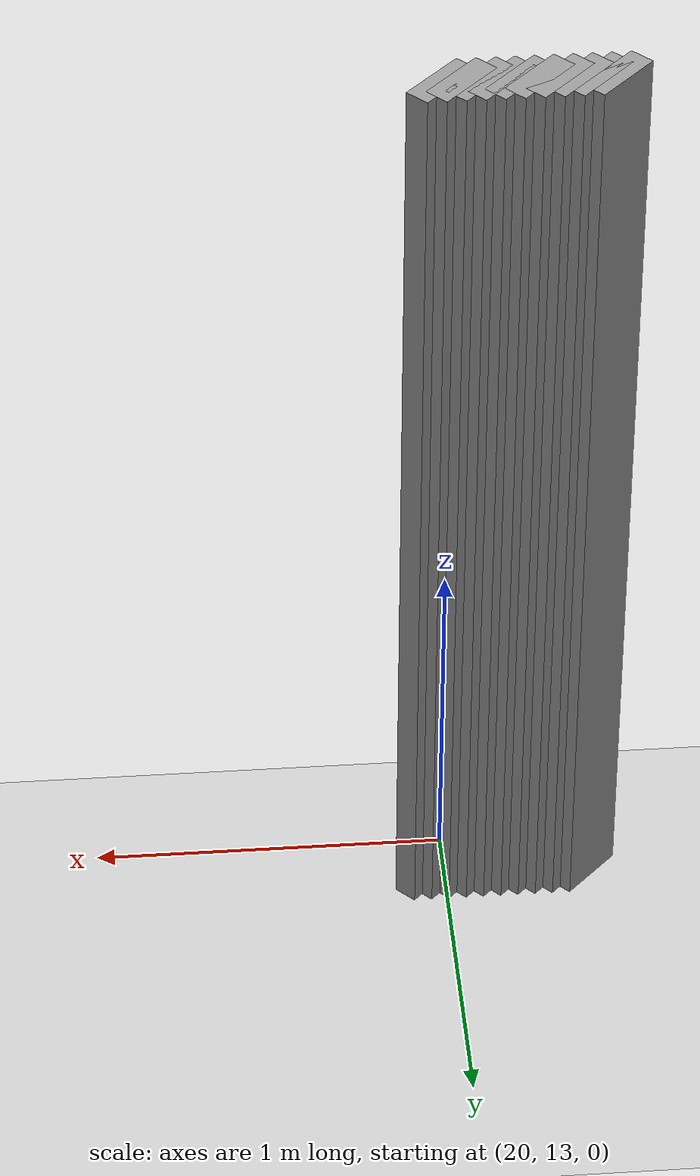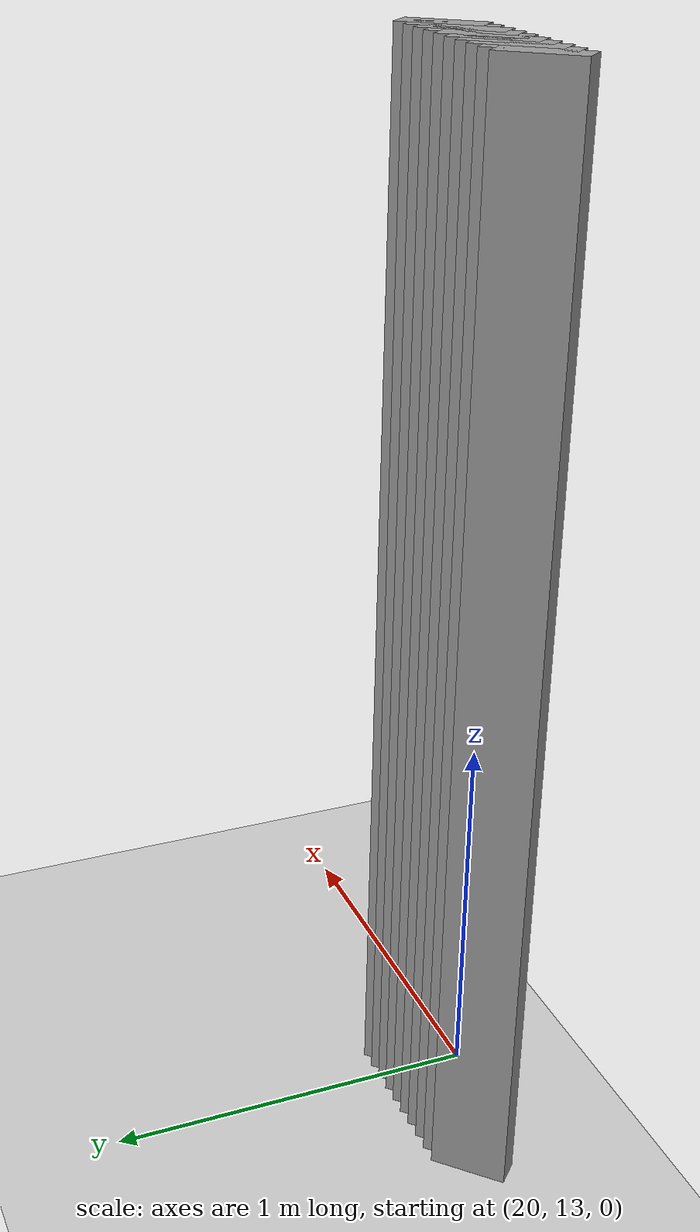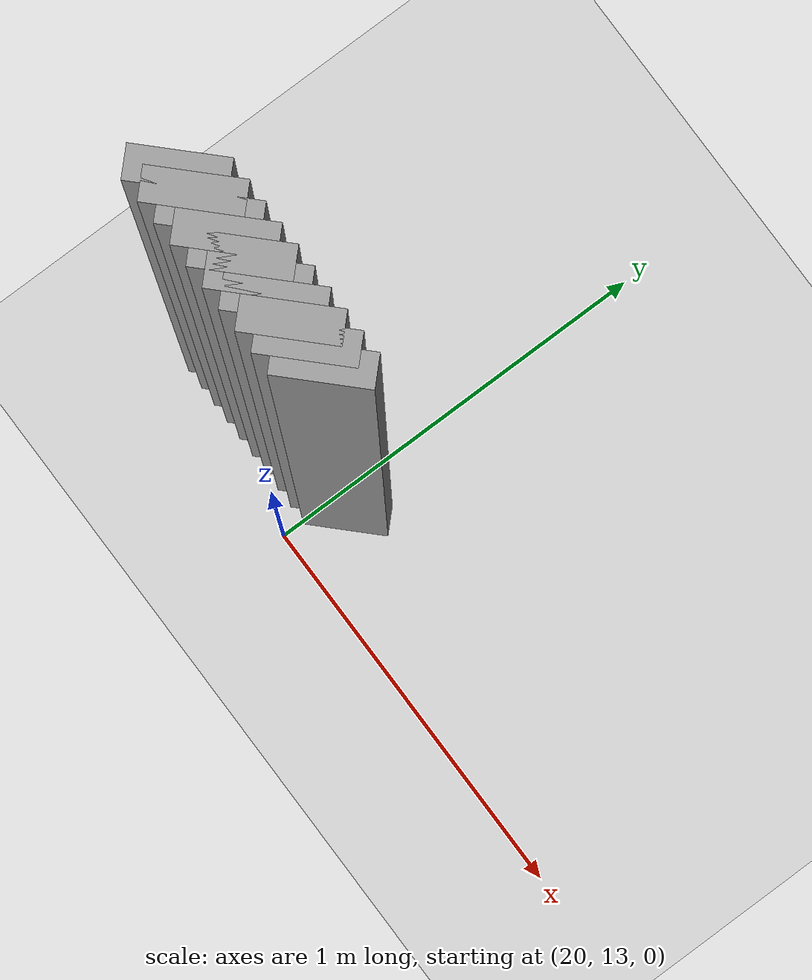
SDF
<sdf version="1.5">
 <world name="default">
  <include><uri>model://ground_plane</uri></include>
  <include><uri>model://sun</uri></include>
  <model name="grey_wall_2186">
   <static>1</static>
   <link name="link">
    <pose>19.6 13.15  1.4 0 0 -0.785398163397</pose>
    <collision name="collision"><geometry><box><size>0.0707106781187 .2  2.8</size></box></geometry></collision>
    <visual name="visual">
     <cast_shadows>0</cast_shadows>
     <geometry><box><size>0.0707106781187 .2  2.8</size></box></geometry>
     <material>
      <script>
       <uri>model://grey_wall/materials/scripts</uri>
       <uri>model://grey_wall/materials/textures</uri>
       <name>vrc/grey_wall</name>
      </script>
     </material>
    </visual>
   </link>
  </model>
  <model name="grey_wall_2187">
   <static>1</static>
   <link name="link">
    <pose>19.65 13.15  1.4 0 0 -0.785398163397</pose>
    <collision name="collision"><geometry><box><size>0.0707106781187 .2  2.8</size></box></geometry></collision>
    <visual name="visual">
     <cast_shadows>0</cast_shadows>
     <geometry><box><size>0.0707106781187 .2  2.8</size></box></geometry>
     <material>
      <script>
       <uri>model://grey_wall/materials/scripts</uri>
       <uri>model://grey_wall/materials/textures</uri>
       <name>vrc/grey_wall</name>
      </script>
     </material>
    </visual>
   </link>
  </model>
  <model name="grey_wall_2188">
   <static>1</static>
   <link name="link">
    <pose>19.7 13.15  1.4 0 0 -0.785398163397</pose>
    <collision name="collision"><geometry><box><size>0.0707106781187 .2  2.8</size></box></geometry></collision>
    <visual name="visual">
     <cast_shadows>0</cast_shadows>
     <geometry><box><size>0.0707106781187 .2  2.8</size></box></geometry>
     <material>
      <script>
       <uri>model://grey_wall/materials/scripts</uri>
       <uri>model://grey_wall/materials/textures</uri>
       <name>vrc/grey_wall</name>
      </script>
     </material>
    </visual>
   </link>
  </model>
  <model name="grey_wall_2189">
   <static>1</static>
   <link name="link">
    <pose>19.75 13.15  1.4 0 0 -0.785398163397</pose>
    <collision name="collision"><geometry><box><size>0.0707106781187 .2  2.8</size></box></geometry></collision>
    <visual name="visual">
     <cast_shadows>0</cast_shadows>
     <geometry><box><size>0.0707106781187 .2  2.8</size></box></geometry>
     <material>
      <script>
       <uri>model://grey_wall/materials/scripts</uri>
       <uri>model://grey_wall/materials/textures</uri>
       <name>vrc/grey_wall</name>
      </script>
     </material>
    </visual>
   </link>
  </model>
  <model name="grey_wall_2190">
   <static>1</static>
   <link name="link">
    <pose>19.8 13.15  1.4 0 0 -0.785398163397</pose>
    <collision name="collision"><geometry><box><size>0.0707106781187 .2  2.8</size></box></geometry></collision>
    <visual name="visual">
     <cast_shadows>0</cast_shadows>
     <geometry><box><size>0.0707106781187 .2  2.8</size></box></geometry>
     <material>
      <script>
       <uri>model://grey_wall/materials/scripts</uri>
       <uri>model://grey_wall/materials/textures</uri>
       <name>vrc/grey_wall</name>
      </script>
     </material>
    </visual>
   </link>
  </model>
  <model name="grey_wall_2191">
   <static>1</static>
   <link name="link">
    <pose>19.85 13.15  1.4 0 0 -0.785398163397</pose>
    <collision name="collision"><geometry><box><size>0.0707106781187 .2  2.8</size></box></geometry></collision>
    <visual name="visual">
     <cast_shadows>0</cast_shadows>
     <geometry><box><size>0.0707106781187 .2  2.8</size></box></geometry>
     <material>
      <script>
       <uri>model://grey_wall/materials/scripts</uri>
       <uri>model://grey_wall/materials/textures</uri>
       <name>vrc/grey_wall</name>
      </script>
     </material>
    </visual>
   </link>
  </model>
  <model name="grey_wall_2192">
   <static>1</static>
   <link name="link">
    <pose>19.9 13.15  1.4 0 0 -0.785398163397</pose>
    <collision name="collision"><geometry><box><size>0.0707106781187 .2  2.8</size></box></geometry></collision>
    <visual name="visual">
     <cast_shadows>0</cast_shadows>
     <geometry><box><size>0.0707106781187 .2  2.8</size></box></geometry>
     <material>
      <script>
       <uri>model://grey_wall/materials/scripts</uri>
       <uri>model://grey_wall/materials/textures</uri>
       <name>vrc/grey_wall</name>
      </script>
     </material>
    </visual>
   </link>
  </model>
  <model name="grey_wall_2193">
   <static>1</static>
   <link name="link">
    <pose>19.95 13.15  1.4 0 0 -0.785398163397</pose>
    <collision name="collision"><geometry><box><size>0.0707106781187 .2  2.8</size></box></geometry></collision>
    <visual name="visual">
     <cast_shadows>0</cast_shadows>
     <geometry><box><size>0.0707106781187 .2  2.8</size></box></geometry>
     <material>
      <script>
       <uri>model://grey_wall/materials/scripts</uri>
       <uri>model://grey_wall/materials/textures</uri>
       <name>vrc/grey_wall</name>
      </script>
     </material>
    </visual>
   </link>
  </model>
  <model name="grey_wall_2194">
   <static>1</static>
   <link name="link">
    <pose>20.0 13.15  1.4 0 0 -0.785398163397</pose>
    <collision name="collision"><geometry><box><size>0.0707106781187 .2  2.8</size></box></geometry></collision>
    <visual name="visual">
     <cast_shadows>0</cast_shadows>
     <geometry><box><size>0.0707106781187 .2  2.8</size></box></geometry>
     <material>
      <script>
       <uri>model://grey_wall/materials/scripts</uri>
       <uri>model://grey_wall/materials/textures</uri>
       <name>vrc/grey_wall</name>
      </script>
     </material>
    </visual>
   </link>
  </model>
  <model name="grey_wall_2195">
   <static>1</static>
   <link name="link">
    <pose>20.05 13.15  1.4 0 0 -0.785398163397</pose>
    <collision name="collision"><geometry><box><size>0.0707106781187 .2  2.8</size></box></geometry></collision>
    <visual name="visual">
     <cast_shadows>0</cast_shadows>
     <geometry><box><size>0.0707106781187 .2  2.8</size></box></geometry>
     <material>
      <script>
       <uri>model://grey_wall/materials/scripts</uri>
       <uri>model://grey_wall/materials/textures</uri>
       <name>vrc/grey_wall</name>
      </script>
     </material>
    </visual>
   </link>
  </model>
 </world>
</sdf>
